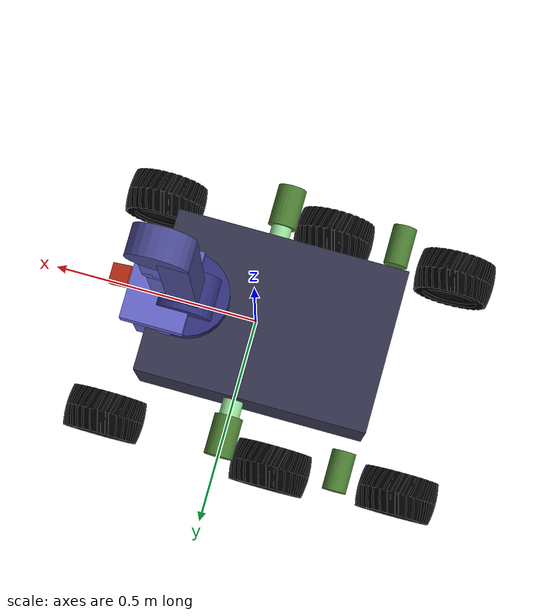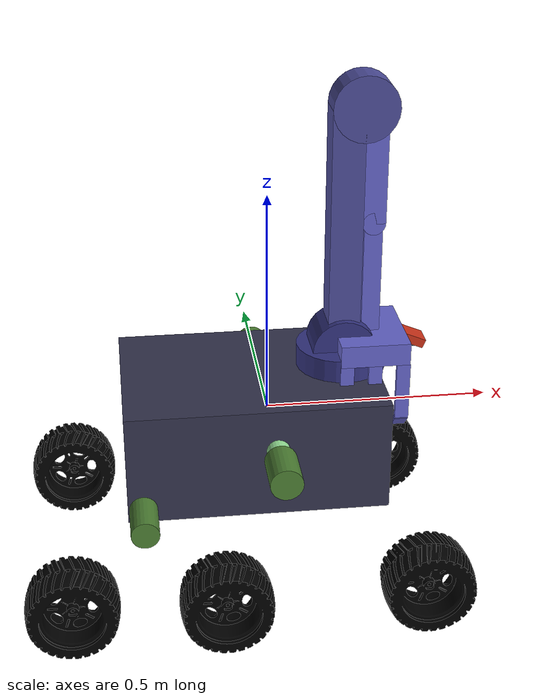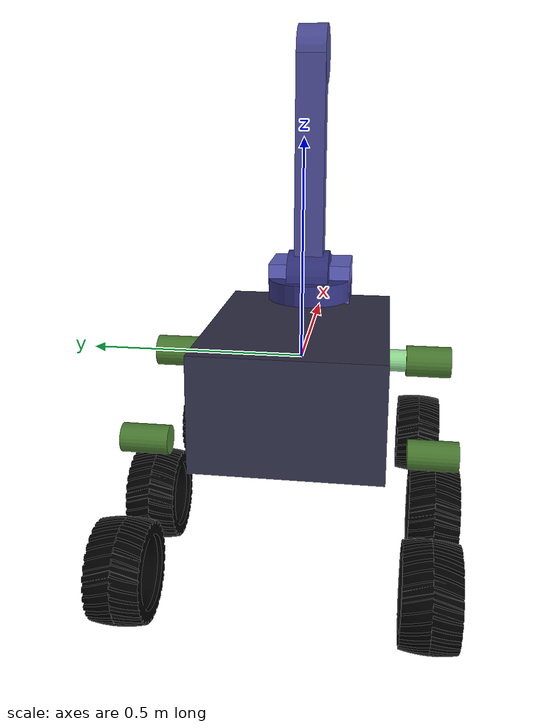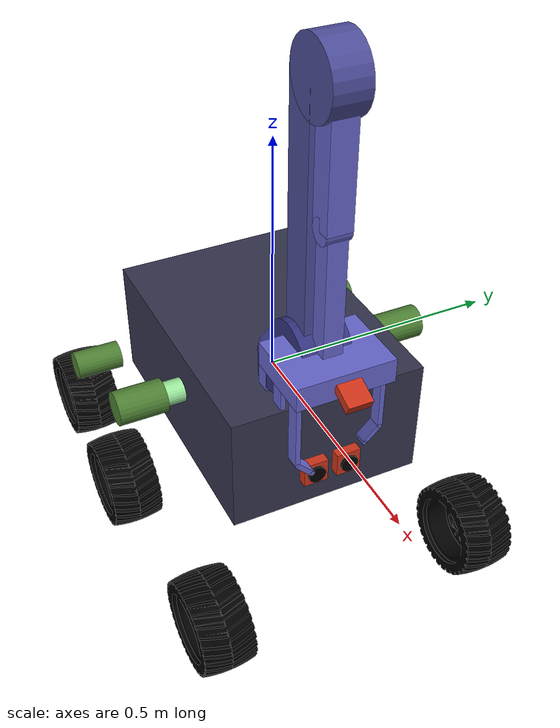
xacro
<?xml version="1.0"?>
<robot xmlns:xacro="http://www.ros.org/wiki/xacro" name="rover">

    <gazebo>
        <plugin name="gazebo_ros_control" filename="libgazebo_ros_pkgs.so">
            <robotNamespace>rover</robotNamespace>
        </plugin>
    </gazebo>

    <xacro:include filename="rocker-bogie/__rocker-bogie.xacro"/>
    <xacro:include filename="base/__base.xacro"/>
    <xacro:include filename="arm/__arm.xacro"/>

</robot>

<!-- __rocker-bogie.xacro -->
<robot xmlns:xacro="http://www.ros.org/wiki/xacro" name="rocker-bogie">

<!-- INCLUDED FILES -->
    <xacro:include filename="rocker/__rocker.xacro"/>
    <xacro:include filename="bogie/__bogie.xacro"/>
    <xacro:include filename="suspension_beam.xacro"/>
    <xacro:include filename="wheel.xacro"/>

<!-- PROPERIES -->
    <!-- SUSPENSION PROPERTIES-->
    <xacro:property name="suspension_width" value=".580"/>

    <xacro:property name="bogie_x" value="-.292"/>
    <xacro:property name="bogie_y" value=" .000"/>
    <xacro:property name="bogie_z" value="-.100"/>

    <xacro:property name="wheel_f_x" value=" .319"/>
    <xacro:property name="wheel_f_y" value=" .000"/>
    <xacro:property name="wheel_f_z" value="-.305"/>

    <xacro:property name="wheel_m_x" value=" .165"/>
    <xacro:property name="wheel_m_y" value=" .020"/>
    <xacro:property name="wheel_m_z" value="-.205"/>

    <xacro:property name="wheel_b_x" value="-.165"/>
    <xacro:property name="wheel_b_y" value="0"/>
    <xacro:property name="wheel_b_z" value="-.205"/>

    <!-- WHEELS POSITIONS -->
    <xacro:property name="wheel_base_f" value=".550"/>
    <xacro:property name="wheel_base_m" value=".600"/>
    <xacro:property name="wheel_base_b" value=".500"/>

    <xacro:property name="h_wheel" value=".250"/>
    <xacro:property name="l_wheel_f" value=".305"/>

    <!-- CUSTOM SIM PROPS -->
    <xacro:property name="h_bogie" value=".170"/>
    <xacro:property name="l_bogie" value=".305"/>
    <xacro:property name="l_wheel_m" value=".200"/>
    <xacro:property name="l_wheel_b" value=".200"/>

    <!-- ELEMENTS DIAMETERS -->
    <xacro:property name="suspension_beam_length" value=".600"/>
    <xacro:property name="suspension_beam_radius" value=".025"/>

    <xacro:property name="rocker_bearing_length" value=".100"/>
    <xacro:property name="rocker_bearing_radius" value=".035"/>

    <xacro:property name="bogie_bearing_length" value=".100"/>
    <xacro:property name="bogie_bearing_radius" value=".030"/>

    <xacro:property name="wheel_width" value=".100"/>
    <xacro:property name="wheel_radius" value=".100"/>

<!-- RELATIVE VARIABLES -->
    <xacro:property name="f_wheel_deviation" value="${(wheel_base_f - wheel_base_m)/2}"/>
    <xacro:property name="b_wheel_deviation" value="${(wheel_base_b - wheel_base_m)/2}"/>
    <xacro:property name="wheel_offset" value=".100"/>

<!-- MAIN LINK -->
    <xacro:suspension_beam name="suspension_beam"/>

<!-- SUSPENSION -->
    <xacro:rocker name="rocker_l" parent="suspension_beam" x="0" y="${suspension_width/2}"    z="0" side="1"/>  <!-- 1 = left -->
    <xacro:rocker name="rocker_r" parent="suspension_beam" x="0" y="${-suspension_width/2}"    z="0" side="-1"/> <!-- -1 = right -->

    <xacro:bogie name="bogie_l" parent="rocker_l_bearing" x="${bogie_x}" y="${bogie_y}"  z="${bogie_z}" side="1"/>
    <xacro:bogie name="bogie_r" parent="rocker_r_bearing" x="${bogie_x}" y="${bogie_y}"  z="${bogie_z}" side="-1"/>

<!-- WHEELS -->
    <xacro:wheel name="fl" parent="rocker_l_bearing" x="${wheel_f_x}" y="${+wheel_f_y}"  z="${wheel_f_z}" side="1"/>
    <xacro:wheel name="fr" parent="rocker_r_bearing" x="${wheel_f_x}" y="${-wheel_f_y}"  z="${wheel_f_z}" side="-1"/>

    <xacro:wheel name="ml" parent="bogie_l_bearing"  x="${wheel_m_x}" y="${+wheel_m_y}"  z="${wheel_m_z}" side="1"/>
    <xacro:wheel name="mr" parent="bogie_r_bearing"  x="${wheel_m_x}" y="${-wheel_m_y}"  z="${wheel_m_z}" side="-1"/>

    <xacro:wheel name="bl" parent="bogie_l_bearing"  x="${wheel_b_x}" y="${+wheel_b_y}"  z="${wheel_b_z}" side="1"/>
    <xacro:wheel name="br" parent="bogie_r_bearing"  x="${wheel_b_x}" y="${-wheel_b_y}"  z="${wheel_b_z}" side="-1"/>

<!-- MY DIFFERENTIAL PLUGIN -->
    <gazebo>
        <plugin name="differential_pid" filename="libDifferentialPID.so">
            <leftJoint>rocker_l_bearing_joint</leftJoint>
            <rightJoint>rocker_r_bearing_joint</rightJoint>
            <topic>/rover/differential_pid</topic>
            <Kp>1000</Kp>
            <Ki>0</Ki>
            <Kd>3000</Kd>
            <limit>10000</limit>
        </plugin>
    </gazebo>

 <!-- DYNAMOMETER PLUGINS -->
    <gazebo>
        <plugin name="rocker_l_bearing_joint_dynamometer" filename="libJointDynamometer.so">
            <joint>rocker_l_bearing_joint</joint>
            <topic>/rover/joint_dynamometer/rocker_l_bearing_joint</topic>
        </plugin>
    </gazebo>

    <gazebo>
        <plugin name="rocker_r_bearing_joint_dynamometer" filename="libJointDynamometer.so">
            <joint>rocker_r_bearing_joint</joint>
            <topic>/rover/joint_dynamometer/rocker_r_bearing_joint</topic>
        </plugin>
    </gazebo>

    <gazebo>
        <plugin name="bogie_l_bearing_joint_dynamometer" filename="libJointDynamometer.so">
            <joint>bogie_l_bearing_joint</joint>
            <topic>/rover/joint_dynamometer/bogie_l_bearing_joint</topic>
        </plugin>
    </gazebo>

    <gazebo>
        <plugin name="bogie_r_bearing_joint_dynamometer" filename="libJointDynamometer.so">
            <joint>bogie_r_bearing_joint</joint>
            <topic>/rover/joint_dynamometer/bogie_r_bearing_joint</topic>
        </plugin>
    </gazebo>

    <gazebo>
        <plugin name="wheel_fl_joint_dynamometer" filename="libJointDynamometer.so">
            <joint>wheel_fl_joint</joint>
            <topic>/rover/joint_dynamometer/wheel_fl_joint</topic>
        </plugin>
    </gazebo>

    <gazebo>
        <plugin name="wheel_fr_joint_dynamometer" filename="libJointDynamometer.so">
            <joint>wheel_fr_joint</joint>
            <topic>/rover/joint_dynamometer/wheel_fr_joint</topic>
        </plugin>
    </gazebo>

    <gazebo>
        <plugin name="wheel_ml_joint_dynamometer" filename="libJointDynamometer.so">
            <joint>wheel_ml_joint</joint>
            <topic>/rover/joint_dynamometer/wheel_ml_joint</topic>
        </plugin>
    </gazebo>

    <gazebo>
        <plugin name="wheel_mr_joint_dynamometer" filename="libJointDynamometer.so">
            <joint>wheel_mr_joint</joint>
            <topic>/rover/joint_dynamometer/wheel_mr_joint</topic>
        </plugin>
    </gazebo>

    <gazebo>
        <plugin name="wheel_bl_joint_dynamometer" filename="libJointDynamometer.so">
            <joint>wheel_bl_joint</joint>
            <topic>/rover/joint_dynamometer/wheel_bl_joint</topic>
        </plugin>
    </gazebo>

    <gazebo>
        <plugin name="wheel_br_joint_dynamometer" filename="libJointDynamometer.so">
            <joint>wheel_br_joint</joint>
            <topic>/rover/joint_dynamometer/wheel_br_joint</topic>
        </plugin>
    </gazebo>

</robot>

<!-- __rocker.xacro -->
<robot xmlns:xacro="http://www.ros.org/wiki/xacro" name="rocker">

<!-- INCLUDE -->
    <xacro:include filename="rocker_bearing.xacro"/>
    <xacro:include filename="rocker_link1.xacro"/>
    <xacro:include filename="rocker_link2.xacro"/>
    <xacro:include filename="rocker_link3.xacro"/>
    <xacro:include filename="rocker_link_diff.xacro"/>

<!-- PROPERTIES -->
    <xacro:property name="rocker_link1_length"      value=".500"/>
    <xacro:property name="rocker_link1_width"       value=".040"/>
    <xacro:property name="rocker_link1_height"      value=".050"/>
    <xacro:property name="rocker_link1_x"            value=".000"/>
    <xacro:property name="rocker_link1_y"            value=".000"/>
    <xacro:property name="rocker_link1_z"            value=".000"/>
    <xacro:property name="rocker_link1_offset_x"    value=".050"/>
    <xacro:property name="rocker_link1_offset_y"    value=".000"/>
    <xacro:property name="rocker_link1_offset_z"    value=".000"/>
    <xacro:property name="rocker_link1_pitch"        value="-.2"/>

    <xacro:property name="rocker_link2_length"      value=".250"/>
    <xacro:property name="rocker_link2_width"       value=".040"/>
    <xacro:property name="rocker_link2_height"      value=".050"/>
    <xacro:property name="rocker_link2_x"            value="${-rocker_link1_length/2+rocker_link1_offset_x}"/>
    <xacro:property name="rocker_link2_y"            value=".000"/>
    <xacro:property name="rocker_link2_z"            value=".000"/>
    <xacro:property name="rocker_link2_offset_x"    value="${-rocker_link2_length/2}"/>
    <xacro:property name="rocker_link2_offset_y"    value=".000"/>
    <xacro:property name="rocker_link2_offset_z"    value=".000"/>
    <xacro:property name="rocker_link2_pitch"        value="1.28"/>

    <xacro:property name="rocker_link3_length"      value=".190"/>
    <xacro:property name="rocker_link3_width"       value=".040"/>
    <xacro:property name="rocker_link3_height"      value=".050"/>
    <xacro:property name="rocker_link3_x"            value="${rocker_link1_length/2+rocker_link1_offset_x}"/>
    <xacro:property name="rocker_link3_y"            value=".000"/>
    <xacro:property name="rocker_link3_z"            value=".000"/>
    <xacro:property name="rocker_link3_offset_x"    value="${rocker_link3_length/2}"/>
    <xacro:property name="rocker_link3_offset_y"    value=".000"/>
    <xacro:property name="rocker_link3_offset_z"    value=".000"/>
    <xacro:property name="rocker_link3_pitch"        value="-1.31"/>

    <xacro:property name="link_diff_lenght" value=".100"/>
    <xacro:property name="link_diff_radius" value=".005"/>

<!-- LINKS -->

    <xacro:macro name="rocker" params="name parent x y z side">

        <xacro:rocker_bearing name="${name}_bearing" parent="${parent}" x="${x}" y="${y}" z="${z}" side="${side}"/>

    </xacro:macro>
</robot>

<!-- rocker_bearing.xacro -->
<robot xmlns:xacro="http://www.ros.org/wiki/xacro" name="rocker">

<!-- GEOMETRY -->
    <xacro:macro name="rocker_geometry">
        <origin rpy="1.57075 0 0"/>
        <geometry>
            <cylinder length="${rocker_bearing_length}" radius="${rocker_bearing_radius}"/>
        </geometry>
    </xacro:macro>

<!-- MATERIAL -->
    <xacro:macro name="rocker_material">
        <material name="dark_green">
            <color rgba=".3 .5 .2 1"/>
        </material>
    </xacro:macro>

<!-- LINK -->
    <xacro:macro name="rocker_bearing" params="name parent x y z side">
        <link name="${name}">
            <visual>
                <xacro:rocker_geometry/>
                <xacro:rocker_material/>
            </visual>
            <collision>
                <xacro:rocker_geometry/>
            </collision>
            <inertial>
                <mass value="3"/>
                <xacro:if value="${side == 1}"> <!-- LEFT-->
                    <origin xyz="0.247725 0.035298 -0.066751" rpy="0 0 0"/>
                    <inertia ixx="0.050813" ixy="0.009439" ixz="-0.021963" iyy="0.135830" iyz="0.004023" izz="0.097893"/>
                </xacro:if>
                <xacro:if value="${side == -1}"> <!-- RIGHT-->
                    <origin xyz="0.247727 -0.035298 -0.066751" rpy="0 0 0"/>
                    <inertia ixx="0.050813" ixy="-0.009439" ixz="-0.021960" iyy="0.135831" iyz="-0.004023" izz="0.097894"/>
                </xacro:if>
            </inertial>
        </link>

        <gazebo reference="${name}">
            <mu1> .2 </mu1>
            <mu2> .2 </mu2>
            <material> Gazebo/Grey </material>
            <selfCollide> True </selfCollide>
        </gazebo>

            <joint name="${name}_joint" type="revolute">
                <parent link="${parent}"/>
                <child link="${name}"/>
                <origin rpy="0 0 0" xyz="${x} ${y} ${z}"/>
                <axis xyz="0 1 0"/>
                <limit effort="10000" velocity="1" lower="-0.5" upper="0.5"/>
                <dynamics damping="2" friction="0"/>
            </joint>

            <gazebo reference="${name}_joint">
                <provideFeedback value="true"/>
            </gazebo>

    </xacro:macro>

</robot>

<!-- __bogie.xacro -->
<robot xmlns:xacro="http://www.ros.org/wiki/xacro" name="bogie">

<!-- INCLUDE -->
    <xacro:include filename="bogie_bearing.xacro"/>
    <xacro:include filename="bogie_link1.xacro"/>
    <xacro:include filename="bogie_link2.xacro"/>

<!-- PROPERTIES -->
    <xacro:property name="bogie_link1_length"      value=".215"/>
    <xacro:property name="bogie_link1_width"       value=".040"/>
    <xacro:property name="bogie_link1_height"      value=".050"/>
    <xacro:property name="bogie_link1_x"            value=".000"/>
    <xacro:property name="bogie_link1_y"            value=".000"/>
    <xacro:property name="bogie_link1_z"            value=".000"/>
    <xacro:property name="bogie_link1_offset_x"    value="${bogie_link1_length/2}"/>
    <xacro:property name="bogie_link1_offset_y"    value=".025"/>
    <xacro:property name="bogie_link1_offset_z"    value=".000"/>
    <xacro:property name="bogie_link1_pitch"        value="-0.38"/>

    <xacro:property name="bogie_link2_length"      value=".215"/>
    <xacro:property name="bogie_link2_width"       value=".040"/>
    <xacro:property name="bogie_link2_height"      value=".050"/>
    <xacro:property name="bogie_link2_x"            value=".000"/>
    <xacro:property name="bogie_link2_y"            value=".000"/>
    <xacro:property name="bogie_link2_z"            value=".000"/>
    <xacro:property name="bogie_link2_offset_x"    value="${-bogie_link2_length/2}"/>
    <xacro:property name="bogie_link2_offset_y"    value="-.025"/>
    <xacro:property name="bogie_link2_offset_z"    value=".000"/>
    <xacro:property name="bogie_link2_pitch"        value="0.38"/>

<!-- LINKS -->
    <xacro:macro name="bogie" params="name parent x y z side">

        <xacro:bogie_bearing name="${name}_bearing" parent="${parent}" x="${x}" y="${y}" z="${z}" side="${side}"/>

    </xacro:macro>

</robot>

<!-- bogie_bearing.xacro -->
<robot xmlns:xacro="http://www.ros.org/wiki/xacro" name="bogie_bearing">

<!-- GEOMETRY -->
    <xacro:macro name="bogie_bearing_geometry">
        <origin rpy="1.57075 0 0"/>
        <geometry>
            <cylinder length="${bogie_bearing_length}" radius="${bogie_bearing_radius}"/>
        </geometry>
    </xacro:macro>

<!-- MATERIAL -->
    <xacro:macro name="bogie_bearing_material">
        <material name="dark_green">
            <color rgba=".3 .5 .2 1"/>
        </material>
    </xacro:macro>

<!-- LINK -->
    <xacro:macro name="bogie_bearing" params="name parent x y z side">
        <link name="${name}">
            <visual>
                <xacro:bogie_bearing_geometry/>
                <xacro:bogie_bearing_material/>
            </visual>
            <collision>
                <xacro:bogie_bearing_geometry/>
            </collision>
            <inertial>
                <mass value="6.143721"/>
                <xacro:if value="${side == 1}"> <!-- LEFT-->
                    <origin xyz="-0.000010 0.045682 0.012347" rpy="0 0 0"/>
                    <inertia ixx="0.082737" ixy="0.015401" ixz="-0.000002" iyy="0.236740" iyz="0.013790" izz="0.176983"/>
                </xacro:if>
                <xacro:if value="${side == -1}"> <!-- RIGHT-->
                    <origin xyz="-0.000007 -0.045682 0.012347" rpy="0 0 0"/>
                    <inertia ixx="0.082737" ixy="-0.015402" ixz="0.000003" iyy="0.236740" iyz="-0.013790" izz="0.176983"/>
                </xacro:if>
            </inertial>
        </link>

        <gazebo reference="${name}">
            <mu1> .2 </mu1>
            <mu2> .2 </mu2>
            <material> Gazebo/Grey </material>
            <selfCollide> True </selfCollide>
        </gazebo>

            <joint name="${name}_joint" type="revolute">
                <parent link="${parent}"/>
                <child link="${name}"/>
                <origin rpy="0 0 0" xyz="${x} ${y} ${z}"/>
                <axis xyz="0 1 0"/>
                <limit effort="1" velocity="1" lower="-0.5" upper="0.5"/>
                <dynamics damping="1"/>
            </joint>

            <gazebo reference="${name}_joint">
                <provideFeedback value="true"/>
            </gazebo>

            <transmission name="${name}_transmission">
                <type>transmission_interface/SimpleTransmission</type>
                <joint name="${name}_joint">
                    <hardwareInterface>EffortJointInterface</hardwareInterface>
                </joint>
                <actuator name="${name}_motor">
                    <hardwareInterface>EffortJointInterface</hardwareInterface>
                    <mechanicalReduction>1</mechanicalReduction>
                </actuator>
            </transmission>

    </xacro:macro>

</robot>

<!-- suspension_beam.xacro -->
<robot xmlns:xacro="http://www.ros.org/wiki/xacro" name="suspension_beam">

<!-- GEOMETRY -->
    <xacro:macro name="suspension_beam_geometry">
        <origin rpy="1.57075 0 0" xyz="0 0 0"/>
        <geometry>
            <cylinder length="${suspension_beam_length}" radius="${suspension_beam_radius}"/>
        </geometry>
    </xacro:macro>

<!-- MATERIAL -->
    <xacro:macro name="suspension_beam_material">
        <material name="light_green">
            <color rgba=".6 .9 .6 1"/>
        </material>
    </xacro:macro>

<!-- LINK -->
    <xacro:macro name="suspension_beam" params="name">

    <!-- DUMMY LINK -->
        <link name="base_link">
        </link>
        <joint name="base_jonit" type="fixed">
            <parent link="base_link"/>
            <child link="${name}"/>
        </joint>

    <!-- MAIN LINK -->
        <link name="${name}">
            <visual>
                <xacro:suspension_beam_geometry/>
                <xacro:suspension_beam_material/>
            </visual>
            <collision>
                <xacro:suspension_beam_geometry/>
            </collision>
            <inertial>
                <mass value="0.001"/>
                <inertia ixx="0.000005" ixy="0" ixz="0" iyy="0.000005" iyz="0" izz="0.000005"/>
            </inertial>
        </link>

        <gazebo reference="base_link">
            <mu1> .2 </mu1>
            <mu2> .2 </mu2>
            <material> Gazebo/Wh </material>
            <selfCollide> True </selfCollide>
        </gazebo>

    </xacro:macro>

</robot>

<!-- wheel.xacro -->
<robot xmlns:xacro="http://www.ros.org/wiki/xacro" name="wheel">

<!-- GEOMETRY -->
    <xacro:macro name="wheel_geometry">
        <origin rpy="1.57075 0 0"/>
        <geometry>
            <cylinder length="${wheel_width}" radius="${wheel_radius}"/>
        </geometry>
    </xacro:macro>

<!-- VISUAL -->
    <xacro:macro name="wheel_visual">
        <origin xyz="0.01 -0.05 -0.13" rpy="0 0 1.57075"/>
        <geometry>
            <mesh filename="package://phobos_meshes/rover_stl/kolo_stl.STL" scale="0.001 0.001 0.001"/>
        </geometry>
    </xacro:macro>

<!-- MATERIAL -->
    <xacro:macro name="wheel_material">
        <material name="black">
            <color rgba=".0 .0 .0 1"/>
        </material>
    </xacro:macro>

<!-- LINK -->
    <xacro:macro name="wheel" params="name parent x y z side">

        <link name="wheel_${name}">
            <visual>
                <xacro:wheel_visual/>
                <xacro:wheel_material/>
            </visual>
            <collision>
                <xacro:wheel_geometry/>
            </collision>
            <inertial>
                 <mass value="1.67"/>
                 <origin xyz="0 0 0" rpy="0 0 0"/>
                 <inertia ixx=".007228" ixy="0" ixz="0" iyy=".011596" iyz="0" izz=".007228"/>
            </inertial>
        </link>

        <gazebo reference="wheel_${name}">
            <mu1 value="0.5"/>
            <mu2 value="0.5"/>
            <material value="Gazebo/Black"/>
            <selfCollide value="True"/>
        </gazebo>

        <joint name="wheel_${name}_joint" type="continuous">
            <parent link="${parent}"/>
            <child link="wheel_${name}"/>
            <origin rpy="${-side*0.02} 0 0" xyz="${x} ${y} ${z}"/>
            <axis xyz="0 1 0"/>
            <limit effort="100" velocity="10"/>
            <dynamics damping="1"/>
        </joint>

        <gazebo reference="wheel_${name}_joint">
            <provideFeedback value="true"/>
        </gazebo>

        <gazebo>
            <plugin name="joint_limiter_wheel_${name}" filename="libJointLimiter.so">
                <joint>wheel_${name}_joint</joint>
                <topic>/simulation/controller/vel/wheel_${name}</topic>
                <lower>-9999999</lower>
                <upper>9999999</upper>
            </plugin>
        </gazebo>
        <gazebo>
            <plugin name="joint_encoder_wheel_${name}" filename="libJointEncoder.so">
                <joint>wheel_${name}_joint</joint>
                <topic>/simulation/encoder/rel/wheel_${name}</topic>
                <lower>0</lower>
                <upper>9999999</upper>
                <absolute>0</absolute>
                <resolution>3600</resolution>
            </plugin>
        </gazebo>
        <gazebo>
            <plugin name="joint_controller_wheel_${name}" filename="libControllerPID.so">
                <joint>wheel_${name}_joint</joint>
                <topic>/simulation/controller/vel/wheel_${name}</topic>
                <Kp>2</Kp>
                <Ki>0.1</Ki>
                <Kd>0.1</Kd>
                <limit>100</limit>
            </plugin>
        </gazebo>

    </xacro:macro>
</robot>

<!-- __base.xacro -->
<robot xmlns:xacro="http://www.ros.org/wiki/xacro" name="rover">

<!-- INCLUDED FILES -->
    <xacro:include filename="main_body.xacro"/>
    <xacro:include filename="tower_yaw.xacro"/>
    <xacro:include filename="tower_pitch.xacro"/>
    <xacro:include filename="../sensors/camera.xacro"/>

<!-- PROPERTIES -->

    <xacro:property name="body_length" value=".570"/>
    <xacro:property name="body_width" value=".400"/>
    <xacro:property name="body_height" value=".250"/>

    <xacro:property name="body_translation_x" value="-.040"/>
    <xacro:property name="body_translation_z" value="-.0325"/>

    <xacro:property name="tower_pose_x" value="${-body_length/2 - +0.05}"/>
    <xacro:property name="tower_pose_y" value=".160"/>
    <xacro:property name="tower_pose_z" value="${body_height/2 + tower_yaw_height/2}"/>

    <xacro:property name="tower_yaw_height" value=".400"/>
    <xacro:property name="tower_yaw_radius" value=".025"/>

    <xacro:property name="tower_pitch_length" value=".100"/>
    <xacro:property name="tower_pitch_width" value=".150"/>
    <xacro:property name="tower_pitch_height" value=".050"/>

<!-- BODY -->
    <xacro:main_body name="main_body" parent="suspension_beam" x="${body_translation_x}" y="0" z="${body_translation_z}"/>

<!--TOWER -->

<!-- SENSORS -->
    <xacro:camera_link name="camera1" parent="main_body" x="${body_length/2 + camera_x/2 + body_translation_x}" y=".035" z="-.070" pitch="0"/>
    <xacro:camera_link name="camera2" parent="main_body" x="${body_length/2 + camera_x/2 + body_translation_x}" y="-.035" z="-.070" pitch="0"/>

</robot>

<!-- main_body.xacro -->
<robot xmlns:xacro="http://www.ros.org/wiki/xacro" name="main_body">

<!-- GEOMETRY -->
    <xacro:macro name="main_body_geometry_1">
        <origin rpy="0 0 0" xyz="${x} ${y} ${z}"/>
        <geometry>
            <box size="${body_length} ${body_width} ${body_height}"/>
        </geometry>
    </xacro:macro>

<!-- MATERIAL -->
    <xacro:macro name="main_body_material">
        <material name="dark_gray">
            <color rgba=".2 .2 .3 1"/>
        </material>
    </xacro:macro>

<!-- LINK -->
    <xacro:macro name="main_body" params="name parent x y z">

    <!-- MAIN LINK -->
        <link name="${name}">
            <visual>
                <xacro:main_body_geometry_1/>
                <xacro:main_body_material/>
            </visual>
            <collision>
                <xacro:main_body_geometry_1/>
            </collision>
    <!-- BOXES FOR STONES -->

            <inertial>
                 <mass value="40"/>
                 <origin rpy="0 0 0" xyz="0 0 -.2"/>
                 <inertia ixx=".1" ixy="0.001" ixz="0.001" iyy=".1" iyz="0.001" izz=".1"/>
            </inertial>
        </link>

        <gazebo reference="${name}">
            <mu1> .2 </mu1>
            <mu2> .2 </mu2>
            <material> Gazebo/Orange </material>
            <selfCollide> True </selfCollide>
        </gazebo>

        <joint name="${name}_joint" type="fixed">
            <parent link="${parent}"/>
            <child link="${name}"/>
            <origin rpy="0 0 0" xyz="0 0 0"/>
        </joint>
        <gazebo reference="${name}_joint">
            <stopCfm>0.8</stopCfm>
            <stopErp>0.5</stopErp>
            <provideFeedback>true</provideFeedback>
            <implicitSpringDamper>true</implicitSpringDamper>
            <fudgeFactor>0.0</fudgeFactor>
        </gazebo>

    </xacro:macro>

</robot>

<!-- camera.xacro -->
<robot xmlns:xacro="http://www.ros.org/wiki/xacro" name="camera">

<!-- DIMMENSIONS -->
    <xacro:property name="camera_x" value=".02"/>
    <xacro:property name="camera_y" value=".05"/>
    <xacro:property name="camera_z" value=".05"/>

    <xacro:property name="camera_lens_radius" value=".018"/>
    <xacro:property name="camera_lens_length" value=".01"/>

<!-- GEOMETRY -->
    <xacro:macro name="camera_geometry_1">
        <origin rpy="0 0 0" xyz="0 0 0" />
        <geometry>
            <box size="${camera_x} ${camera_y} ${camera_z}"/>
        </geometry>
    </xacro:macro>

    <xacro:macro name="camera_geometry_2">
        <origin rpy="0 0 0" xyz="0 0 0" />
        <geometry>
            <cylinder radius="${camera_lens_radius}" length="${camera_lens_length}"/>
        </geometry>
    </xacro:macro>

<!-- MATERIAL -->
    <xacro:macro name="camera_material_1">
        <material name="Red">
            <color rgba=".8 .2 .1 1"/>
        </material>
    </xacro:macro>

    <xacro:macro name="camera_material_2">
        <material name="Black">
            <color rgba="0 0 0 1"/>
        </material>
    </xacro:macro>

<!-- CAMERA GAZEBO PLUGIN -->
    <xacro:macro name="camera_plugin" params="name width height">
        <gazebo reference="${name}">
            <sensor type="camera" name="${name}">
                <update_rate> 10.0 </update_rate>
                <camera name="{name}" >
                    <horizontal_fov>2</horizontal_fov>
                    <image>
                        <width>${width}</width>
                        <height>${height}</height>
                        <format>B8G8R8</format>
                    </image>
                    <clip>
                        <near>0.02</near>
                        <far>300</far>
                    </clip>
                    <noise>
                        <type>gaussian</type>
                        <mean>0.0</mean>
                        <stddev>0.007</stddev>
                    </noise>
                </camera>

                <plugin name="camera_controller" filename="libgazebo_ros_camera.so">
                    <alwaysOn>True</alwaysOn>
                    <updateRate>0.0</updateRate>
                    <cameraName>rover/${name}</cameraName>
                    <imageTopicName>image_raw</imageTopicName>
                    <cameraInfoTopicName>camera_info</cameraInfoTopicName>
                    <frameName>${name}_lens</frameName>
                    <hackBaseline>0.07</hackBaseline>
                    <distortionK1>0.0</distortionK1>
                    <distortionK2>0.0</distortionK2>
                    <distortionK3>0.0</distortionK3>
                    <distortionT1>0.0</distortionT1>
                    <distortionT2>0.0</distortionT2>
                </plugin>

            </sensor>
        </gazebo>
    </xacro:macro>

<!-- LINK -->
    <xacro:macro name="camera_link" params="name parent x y z pitch">

        <!--CAMERA BOARD -->

        <link name="${name}">
            <visual>
                <xacro:camera_geometry_1/>
                <xacro:camera_material_1/>
            </visual>
            <collision>
                <xacro:camera_geometry_1/>
            </collision>
            <inertial>
                 <mass value=".01"/>
                 <inertia ixx=".00000003" ixy="0" ixz="0" iyy=".00000003" iyz="0" izz=".00000003"/>
            </inertial>
        </link>

        <joint name="${name}_joint" type="fixed">
            <parent link="${parent}"/>
            <child link="${name}"/>
            <origin rpy="0 ${pitch} 0" xyz="${x} ${y} ${z}"/>
        </joint>

        <gazebo reference="${name}">
            <mu1> .2 </mu1>
            <mu2> .2 </mu2>
            <material> Gazebo/Red </material>
            <selfCollide> false </selfCollide>
        </gazebo>

        <!--CAMERA LENS -->

        <link name="${name}_lens">
            <visual>
                <xacro:camera_geometry_2/>
                <xacro:camera_material_2/>
            </visual>
            <collision>
                <xacro:camera_geometry_2/>
            </collision>
            <inertial>
                 <mass value=".01"/>
                 <inertia ixx=".003" ixy="0" ixz="0" iyy=".003" iyz="0" izz=".003"/>
            </inertial>
        </link>

        <joint name="${name}_lens_joint" type="fixed">
            <parent link="${name}"/>
            <child link="${name}_lens"/>
            <origin rpy="-1.57075 0 -1.57075" xyz="${camera_x/2} 0 0"/>
        </joint>

        <gazebo reference="${name}_lens">
            <mu1> .2 </mu1>
            <mu2> .2 </mu2>
            <material> Gazebo/Black </material>
            <selfCollide> false </selfCollide>
        </gazebo>

        <xacro:camera_plugin name="${name}" width="320" height="240"/>

    </xacro:macro>
</robot>

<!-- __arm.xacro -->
<robot xmlns:xacro="http://www.ros.org/wiki/xacro" name="arm">

<!-- INCLUDED FILES -->
    <xacro:include filename="link0.xacro"/>
    <xacro:include filename="link1.xacro"/>
    <xacro:include filename="link2.xacro"/>
    <xacro:include filename="link3.xacro"/>
    <xacro:include filename="link4.xacro"/>
    <xacro:include filename="finger.xacro"/>
    <xacro:include filename="finger_b.xacro"/>

    <xacro:include filename="../sensors/camera.xacro"/>

<!-- PROPERTIES -->
    <xacro:property name="manipulator_pose_x" value=".165"/>
    <xacro:property name="manipulator_pose_z" value=".125"/>

    <xacro:property name="link0_length1" value=".050"/>
    <xacro:property name="link0_radius1" value=".100"/>
    <xacro:property name="link0_length2" value=".100"/>
    <xacro:property name="link0_radius2" value=".070"/>

    <xacro:property name="link1_length" value=".500"/>
    <xacro:property name="link1_width" value=".070"/>
    <xacro:property name="link1_height" value=".070"/>

    <xacro:property name="link2_length" value=".250"/>
    <xacro:property name="link2_width" value=".050"/>
    <xacro:property name="link2_height" value=".050"/>

    <xacro:property name="link3_length" value=".250"/>
    <xacro:property name="link3_width" value=".040"/>
    <xacro:property name="link3_height" value=".040"/>

    <xacro:property name="link4_length" value=".050"/>
    <xacro:property name="link4_width" value=".200"/>
    <xacro:property name="link4_height" value=".152"/>

    <xacro:property name="finger_length" value=".130"/>
    <xacro:property name="finger_width" value=".010"/>
    <xacro:property name="finger_height" value=".030"/>

<!-- LINKS -->
    <xacro:link0 name="link0" parent="main_body" x="${manipulator_pose_x}"            y="0"    z="${manipulator_pose_z}"/>
    <xacro:link1 name="link1" parent="link0"    x="0"              y="0"    z="${link0_length1/2 + link1_height/2}"/>
    <xacro:link2 name="link2" parent="link1"    x="${-link1_length}"    y="0"    z="${link1_height/2}"/>
    <xacro:link3 name="link3" parent="link2"    x="${link2_length}"     y="0"    z="${link2_height/2}"/>
    <xacro:link4 name="link4" parent="link3"    x="${link3_length}"     y="0"    z="0"/>

<!-- GRABBER -->

    <xacro:finger name="finger1" parent="link4" x="${link4_length + finger_length/2}" y="${link4_width/2 - finger_width/2}" z="${finger_height+.001}" side="-1"/>
    <xacro:finger_b name="finger1b" parent="finger1" x="0" y="0" z="${-2*finger_height-.001}" side="-1"/>

    <xacro:finger name="finger2" parent="link4" x="${link4_length + finger_length/2}" y="${-link4_width/2 + finger_width/2}" z="0" side="1"/>
    <xacro:finger_b name="finger2c" parent="finger2" x="0" y="0" z="${2*finger_height+.002}" side="1"/>
    <xacro:finger_b name="finger2b" parent="finger2" x="0" y="0" z="${-2*finger_height-.002}" side="1"/>

<!-- SENSORS -->
    <xacro:camera_link name="camera4" parent="link4" x=".030" y="0" z=".100" pitch="0.4"/>

</robot>

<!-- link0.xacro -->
<robot xmlns:xacro="http://www.ros.org/wiki/xacro" name="link0">

<!-- GEOMETRY 1 -->
    <xacro:macro name="link0_geometry1">
        <origin rpy="0 0 0" xyz="0 0 0"/>
        <geometry>
            <cylinder length="${link0_length1}" radius="${link0_radius1}"/>
        </geometry>
    </xacro:macro>

<!-- GEOMETRY 2 -->
    <xacro:macro name="link0_geometry2">
        <origin rpy="1.57075 0 0" xyz="0 0 ${link0_length1/2}"/>
        <geometry>
            <cylinder length="${link0_length2}" radius="${link0_radius2}"/>
        </geometry>
    </xacro:macro>

<!-- MATERIAL -->
    <xacro:macro name="link0_material">
        <material name="blue">
            <color rgba=".2 .2 .5 1"/>
        </material>
    </xacro:macro>

<!-- LINK -->
    <xacro:macro name="link0" params="name parent x y z">

<!-- LINK -->
        <link name="${name}">
            <visual>
                <xacro:link0_geometry1/>
                <xacro:link0_material/>
            </visual>
            <visual>
                <xacro:link0_geometry2/>
                <xacro:link0_material/>
            </visual>

            <collision>
                <xacro:link0_geometry1/>
            </collision>
            <collision>
                <xacro:link0_geometry2/>
            </collision>
            <inertial>
                 <mass value="1"/>
                 <inertia ixx=".003" ixy=".00" ixz=".00" iyy=".003" iyz=".00" izz=".003"/>
            </inertial>
        </link>
        <gazebo reference="${name}">
            <mu1> .2 </mu1>
            <mu2> .2 </mu2>
            <material> Gazebo/Grey </material>
            <selfCollide> False </selfCollide>
            <implicitSpringDamper> True </implicitSpringDamper>
        </gazebo>

<!-- JOINT -->
        <joint name="${name}_joint" type="revolute">
            <parent link="${parent}"/>
            <child link="${name}"/>
            <origin rpy="0 0 0" xyz="${x} ${y} ${z}"/>
            <axis xyz="0 0 -1"/>
            <limit effort="100" velocity="1" lower="-3" upper="3"/>
            <dynamics damping="1"/>
        </joint>
        <gazebo>
            <plugin name="${name}_joint_limiter" filename="libJointLimiter.so">
                <joint>${name}_joint</joint>
                <topic>/rover/${name}_velocity_controller</topic>
                <lower>-3</lower>
                <upper>3</upper>
            </plugin>
        </gazebo>
        <gazebo>
            <plugin name="${name}_controller" filename="libControllerPID.so">
                <joint>${name}_joint</joint>
                <topic>/rover/${name}_velocity_controller</topic>
                <Kp>20</Kp>
                <Ki>2</Ki>
                <Kd>1</Kd>
            </plugin>
        </gazebo>

<!-- TRANSMISSION -->

    </xacro:macro>
</robot>

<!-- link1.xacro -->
<robot xmlns:xacro="http://www.ros.org/wiki/xacro" name="link1">

<!-- GEOMETRY -->
    <xacro:macro name="link1_geometry_1">
        <origin rpy="0 0 0" xyz="${-link1_length/2} 0 0" />
        <geometry>
            <box size="${link1_length} ${link1_width} ${link1_height}"/>
        </geometry>
    </xacro:macro>

    <xacro:macro name="link1_geometry_2">
        <origin rpy="1.57075 0 0" xyz="${-link1_length} 0 ${link1_height/2}" />
        <geometry>
            <cylinder length="${link1_width}" radius="${link1_height}"/>
        </geometry>
    </xacro:macro>

<!-- MATERIAL -->
    <xacro:macro name="link1_material">
        <material name="light_blue">
            <color rgba=".3 .3 .6 1"/>
        </material>
    </xacro:macro>

<!-- LINK -->
    <xacro:macro name="link1" params="name parent x y z ">
        <link name="${name}">
            <visual>
                <xacro:link1_geometry_1/>
                <xacro:link1_material/>
            </visual>
            <visual>
                <xacro:link1_geometry_2/>
                <xacro:link1_material/>
            </visual>
            <collision>
                <xacro:link1_geometry_1/>
            </collision>
            <collision>
                <xacro:link1_geometry_2/>
            </collision>
            <inertial>
                 <origin rpy="0 0 0" xyz="${-link1_length/2} 0 0" />
                 <mass value="1"/>
                 <inertia ixx=".003" ixy="0.000" ixz="0.000" iyy=".003" iyz="0.000" izz=".003"/>
            </inertial>
        </link>
        <gazebo reference="${name}">
            <mu1> .2 </mu1>
            <mu2> .2 </mu2>
            <material> Gazebo/Grey </material>
            <selfCollide>True</selfCollide>
        </gazebo>

        <joint name="${name}_joint" type="revolute">
            <parent link="${parent}"/>
            <child link="${name}"/>
            <origin rpy="0 1.57075 0" xyz="${x} ${y} ${z}"/>
            <axis xyz="0 1 0"/>
            <limit effort="100" velocity="1" lower="-1.25" upper="1.6"/>
            <dynamics damping="1"/>
        </joint>
        <gazebo>
            <plugin name="joint_limiter_${name}" filename="libJointLimiter.so">
                <joint>${name}_joint</joint>
                <topic>/simulation/controller/vel/${name}</topic>
                <lower>-1.25</lower>
                <upper>1.6</upper>
            </plugin>
        </gazebo>
        <gazebo>
            <plugin name="joint_encoder_${name}" filename="libJointEncoder.so">
                <joint>${name}_joint</joint>
                <topic>/simulation/encoder/abs/${name}</topic>
                <lower>-1.25</lower>
                <upper>1.6</upper>
                <absolute>1</absolute>
                <resolution>3600</resolution>
            </plugin>
        </gazebo>
        <gazebo>
            <plugin name="joint_controller_${name}" filename="libControllerPID.so">
                <joint>${name}_joint</joint>
                <topic>/simulation/controller/vel/${name}</topic>
                <Kp>30</Kp>
                <Ki>3</Ki>
                <Kd>2</Kd>
            </plugin>
        </gazebo>

    </xacro:macro>
</robot>

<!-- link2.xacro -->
<robot xmlns:xacro="http://www.ros.org/wiki/xacro" name="link2">

<!-- GEOMETRY -->
    <xacro:macro name="link2_geometry_1">
        <origin rpy="0 0 0" xyz="${link2_length/2} 0 ${link2_height/2}" />
        <geometry>
            <box size="${link2_length} ${link2_width} ${link2_height}"/>
        </geometry>
    </xacro:macro>

    <xacro:macro name="link2_geometry_2">
        <origin rpy="1.57075 0 0" xyz="${link2_length} 0 ${link2_height/2}" />
        <geometry>
            <cylinder length="${link2_width}" radius="${link2_height/2}"/>
        </geometry>
    </xacro:macro>

<!-- MATERIAL -->
    <xacro:macro name="link2_material">
        <material name="link2_color">
            <color rgba=".4 .4 .8 1"/>
        </material>
    </xacro:macro>

<!-- LINK -->
    <xacro:macro name="link2" params="name parent x y z">

        <link name="${name}">
            <visual>
                <xacro:link2_geometry_1/>
                <xacro:link2_material/>
            </visual>
            <visual>
                <xacro:link2_geometry_2/>
                <xacro:link2_material/>
            </visual>
            <collision>
                <xacro:link2_geometry_1/>
            </collision>
            <collision>
                <xacro:link2_geometry_2/>
            </collision>
            <inertial>
                <origin rpy="0 0 0" xyz="${link2_length/2} 0 ${link2_height/2}" />
                <mass value="1"/>
                <inertia ixx=".003" ixy="0.000" ixz="0.000" iyy=".003" iyz="0.000" izz=".003"/>
            </inertial>
        </link>
        <gazebo reference="${name}">
            <mu1> .2 </mu1>
            <mu2> .2 </mu2>
            <material> Gazebo/Grey </material>
            <selfCollide>True</selfCollide>
        </gazebo>

        <joint name="${name}_joint" type="revolute">
            <parent link="${parent}"/>
            <child link="${name}"/>
            <origin rpy="0 0 0" xyz="${x} ${y} ${z}"/>
            <axis xyz="0 -1 0"/>
            <limit effort="100" velocity="1" lower="0" upper="3.65"/>
            <dynamics damping="1"/>
        </joint>
        <gazebo>
            <plugin name="joint_limiter_${name}" filename="libJointLimiter.so">
                <joint>${name}_joint</joint>
                <topic>/simulation/controller/vel/${name}</topic>
                <lower>0</lower>
                <upper>3.65</upper>
            </plugin>
        </gazebo>
        <gazebo>
            <plugin name="joint_encoder_${name}" filename="libJointEncoder.so">
                <joint>${name}_joint</joint>
                <topic>/simulation/encoder/abs/${name}</topic>
                <lower>0</lower>
                <upper>3.65</upper>
                <absolute>1</absolute>
                <resolution>3600</resolution>
            </plugin>
        </gazebo>
        <gazebo>
            <plugin name="joint_controller_${name}" filename="libControllerPID.so">
                <joint>${name}_joint</joint>
                <topic>/simulation/controller/vel/${name}</topic>
                <Kp>30</Kp>
                <Ki>3</Ki>
                <Kd>2</Kd>
            </plugin>
        </gazebo>

    </xacro:macro>
</robot>

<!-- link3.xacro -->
<robot xmlns:xacro="http://www.ros.org/wiki/xacro" name="link3">

<!-- GEOMETRY -->
    <xacro:macro name="link3_geometry">
        <origin rpy="0 0 0" xyz="${link3_length/2} 0 0" />
        <geometry>
            <box size="${link3_length} ${link3_width} ${link3_height}"/>
        </geometry>
    </xacro:macro>

<!-- MATERIAL -->
    <xacro:macro name="link3_material">
        <material name="link3_color">
            <color rgba=".4 .4 .8 1"/>
        </material>
    </xacro:macro>

<!-- LINK -->
    <xacro:macro name="link3" params="name parent x y z">

        <link name="${name}">
            <visual>
                <xacro:link3_geometry/>
                <xacro:link3_material/>
            </visual>
            <collision>
                <xacro:link3_geometry/>
            </collision>
            <inertial>
                <origin rpy="0 0 0" xyz="${link3_length/2} 0 ${link3_height/2}" />
                <mass value="1"/>
                <inertia ixx=".003" ixy="0.000" ixz="0.000" iyy=".003" iyz="0.000" izz=".003"/>
            </inertial>
        </link>
        <gazebo reference="${name}">
            <mu1> .2 </mu1>
            <mu2> .2 </mu2>
            <material> Gazebo/Grey </material>
            <selfCollide>True</selfCollide>
        </gazebo>

        <joint name="${name}_joint" type="revolute">
            <parent link="${parent}"/>
            <child link="${name}"/>
            <origin rpy="0 0 0" xyz="${x} ${y} ${z}"/>
            <axis xyz="0 -1 0"/>
            <limit effort="30" velocity="1" lower="-2.3" upper="1.1"/>
            <dynamics damping="1"/>
        </joint>
        <gazebo>
            <plugin name="joint_limiter_${name}" filename="libJointLimiter.so">
                <joint>${name}_joint</joint>
                <topic>/simulation/controller/vel/${name}</topic>
                <lower>-2.3</lower>
                <upper>1.1</upper>
            </plugin>
        </gazebo>
        <gazebo>
            <plugin name="joint_encoder_${name}" filename="libJointEncoder.so">
                <joint>${name}_joint</joint>
                <topic>/simulation/encoder/abs/${name}</topic>
                <lower>-2.3</lower>
                <upper>1.1</upper>
                <absolute>1</absolute>
                <resolution>3600</resolution>
            </plugin>
        </gazebo>
        <gazebo>
            <plugin name="joint_controller_${name}" filename="libControllerPID.so">
                <joint>${name}_joint</joint>
                <topic>/simulation/controller/vel/${name}</topic>
                <Kp>20</Kp>
                <Ki>0</Ki>
                <Kd>2</Kd>
            </plugin>
        </gazebo>

        <gazebo reference="${name}">
            <mu1> .2 </mu1>
            <mu2> .2 </mu2>
            <material> Gazebo/Blue </material>
            <selfCollide>True</selfCollide>
        </gazebo>

    </xacro:macro>
</robot>

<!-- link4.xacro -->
<robot xmlns:xacro="http://www.ros.org/wiki/xacro" name="link4">

<!-- GEOMETRY -->
    <xacro:macro name="link4_geometry">
        <origin rpy="0 0 0" xyz="${link4_length/2} 0 0" />
        <geometry>
            <box size="${link4_length} ${link4_width} ${link4_height}"/>
        </geometry>
    </xacro:macro>

<!-- MATERIAL -->
    <xacro:macro name="link4_material">
        <material name="link4_color">
            <color rgba=".4 .4 .8 1"/>
        </material>
    </xacro:macro>

<!-- LINK -->
    <xacro:macro name="link4" params="name parent x y z">

        <link name="${name}">
            <visual>
                <xacro:link4_geometry/>
                <xacro:link4_material/>
            </visual>
            <collision>
                <xacro:link4_geometry/>
            </collision>
            <inertial>
                <origin rpy="0 0 0" xyz="${link4_length/2} 0 ${link4_height/2}" />
                <mass value="0.7"/>
                <inertia ixx=".003" ixy="0.000" ixz="0.000" iyy=".003" iyz="0.000" izz=".003"/>
            </inertial>
        </link>
        <gazebo reference="${name}">
            <mu1> .2 </mu1>
            <mu2> .2 </mu2>
            <material> Gazebo/Grey </material>
            <selfCollide>True</selfCollide>
        </gazebo>

        <joint name="${name}_joint" type="revolute">
            <parent link="${parent}"/>
            <child link="${name}"/>
            <origin rpy="0 0 0" xyz="${x} ${y} ${z}"/>
            <axis xyz="1 0 0"/>
            <limit effort="40" velocity="3" lower="-3.14" upper="3.14"/>
            <dynamics damping="1"/>
        </joint>
        <gazebo>
            <plugin name="${name}_joint_limiter" filename="libJointLimiter.so">
                <joint>${name}_joint</joint>
                <topic>/rover/${name}_velocity_controller</topic>
                <lower>-3.14</lower>
                <upper>3.14</upper>
            </plugin>
        </gazebo>
        <gazebo>
            <plugin name="${name}_controller" filename="libControllerPID.so">
                <joint>${name}_joint</joint>
                <topic>/rover/${name}_velocity_controller</topic>
                <Kp>1.05</Kp>
                <Ki>0</Ki>
                <Kd>0.02</Kd>
            </plugin>
        </gazebo>

        <gazebo reference="${name}">
            <mu1> .2 </mu1>
            <mu2> .2 </mu2>
            <material> Gazebo/Yellow </material>
            <selfCollide>True</selfCollide>
        </gazebo>

    </xacro:macro>
</robot>

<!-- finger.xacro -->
<robot xmlns:xacro="http://www.ros.org/wiki/xacro" name="finger">

<!-- GEOMETRY -->
    <xacro:macro name="finger_geometry_1">
        <origin rpy="0 0 0" xyz="0 0 0" />
        <geometry>
            <box size="${finger_length} ${finger_width} ${finger_height}"/>
        </geometry>
    </xacro:macro>

    <xacro:macro name="finger_geometry_2">
        <origin rpy="0 0 ${0.785*side}" xyz="${finger_length/2+finger_length/6*0.707} ${finger_length/6*0.707*side} 0" />
        <geometry>
            <box size="${finger_length/3} ${finger_width} ${finger_height}"/>
        </geometry>
    </xacro:macro>

    <xacro:macro name="finger_geometry_3">
        <origin rpy="0 0 ${0.785*side}" xyz="${finger_length/2} 0 0" />
        <geometry>
            <cylinder length="${finger_height}" radius="${finger_width/2}"/>
        </geometry>
    </xacro:macro>

    <xacro:macro name="finger_geometry_4">
        <origin rpy="0 0 ${0.785*side}" xyz="${finger_length/2+finger_length/6*1.414} ${finger_length/6*1.414*side} 0" />
        <geometry>
            <cylinder length="${finger_height}" radius="${finger_width/2}"/>
        </geometry>
    </xacro:macro>

<!-- MATERIAL -->
    <xacro:macro name="finger_material">
        <material name="finger_color">
            <color rgba=".4 .4 .8 1"/>
        </material>
    </xacro:macro>

<!-- LINK -->
    <xacro:macro name="finger" params="name parent x y z side">

        <link name="${name}">
            <visual>
                <xacro:finger_geometry_1/>
                <xacro:finger_material/>
            </visual>
            <collision>
                <xacro:finger_geometry_1/>
            </collision>

            <visual>
                <xacro:finger_geometry_2/>
                <xacro:finger_material/>
            </visual>
            <collision>
                <xacro:finger_geometry_2/>
            </collision>

            <visual>
                <xacro:finger_geometry_3/>
                <xacro:finger_material/>
            </visual>
            <collision>
                <xacro:finger_geometry_3/>
            </collision>

            <visual>
                <xacro:finger_geometry_4/>
                <xacro:finger_material/>
            </visual>
            <collision>
                <xacro:finger_geometry_4/>
            </collision>

            <inertial>
                <origin rpy="0 0 0" xyz="0 0 0" />
                <mass value=".2"/>
                <inertia ixx=".0003" ixy="0.000" ixz="0.000" iyy=".0003" iyz="0.000" izz=".0003"/>
            </inertial>
        </link>
        <gazebo reference="${name}">
            <mu1> 10 </mu1>
            <mu2> 10 </mu2>
            <material> Gazebo/Grey </material>
            <selfCollide>True</selfCollide>
        </gazebo>

        <joint name="${name}_joint" type="prismatic">
            <parent link="${parent}"/>
            <child link="${name}"/>
            <origin rpy="0 0 0" xyz="${x} ${y} ${z}"/>
            <axis xyz="0 ${side*1} 0"/>
            <limit effort="10000" velocity="1" lower="0" upper="${link_4_width/2 - finger_width}"/>
            <dynamics damping=".1"/>
        </joint>
        <gazebo>
            <plugin name="joint_limiter_${name}" filename="libJointLimiter.so">
                <joint>${name}_joint</joint>
                <topic>/simulation/controller/vel/${name}</topic>
                <lower>0</lower>
                <upper>${link_4_width/2 - finger_width}</upper>
            </plugin>
        </gazebo>
        <gazebo>
            <plugin name="joint_encoder_${name}" filename="libJointEncoder.so">
                <joint>${name}_joint</joint>
                <topic>/simulation/encoder/abs/${name}</topic>
                <lower>0</lower>
                <upper>${link_4_width/2 - finger_width}</upper>
                <absolute>1</absolute>
                <resolution>10000</resolution>
            </plugin>
        </gazebo>
        <gazebo>
            <plugin name="joint_encoder_${name}" filename="libJointEncoder.so">
                <joint>${name}_joint</joint>
                <topic>/simulation/encoder/abs/${name}</topic>
                <lower>0</lower>
                <upper>${link_4_width/2 - finger_width}</upper>
                <absolute>1</absolute>
                <resolution>10000</resolution>
            </plugin>
        </gazebo>
        <gazebo>
            <plugin name="joint_controller${name}" filename="libControllerPID.so">
                <joint>${name}_joint</joint>
                <topic>/simulation/controller/vel/${name}</topic>
                <Kp>20</Kp>
                <Ki>2</Ki>
                <Kd>5</Kd>
            </plugin>
        </gazebo>

    </xacro:macro>
</robot>

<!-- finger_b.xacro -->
<robot xmlns:xacro="http://www.ros.org/wiki/xacro" name="finger_b">

<!-- GEOMETRY -->
    <xacro:macro name="finger_b_geometry_1">
        <origin rpy="0 0 0" xyz="0 0 0" />
        <geometry>
            <box size="${finger_length} ${finger_width} ${finger_height}"/>
        </geometry>
    </xacro:macro>

    <xacro:macro name="finger_b_geometry_2">
        <origin rpy="0 0 ${0.785*side}" xyz="${finger_length/2+finger_length/6*0.707} ${finger_length/6*0.707*side} 0" />
        <geometry>
            <box size="${finger_length/3} ${finger_width} ${finger_height}"/>
        </geometry>
    </xacro:macro>

    <xacro:macro name="finger_b_geometry_3">
        <origin rpy="0 0 ${0.785*side}" xyz="${finger_length/2} 0 0" />
        <geometry>
            <cylinder length="${finger_height}" radius="${finger_width/2}"/>
        </geometry>
    </xacro:macro>

    <xacro:macro name="finger_b_geometry_4">
        <origin rpy="0 0 ${0.785*side}" xyz="${finger_length/2+finger_length/6*1.414} ${finger_length/6*1.414*side} 0" />
        <geometry>
            <cylinder length="${finger_height}" radius="${finger_width/2}"/>
        </geometry>
    </xacro:macro>

<!-- MATERIAL -->
    <xacro:macro name="finger_b_material">
        <material name="finger_b_color">
            <color rgba=".4 .4 .8 1"/>
        </material>
    </xacro:macro>

<!-- LINK -->
    <xacro:macro name="finger_b" params="name parent x y z side">

        <link name="${name}">
            <visual>
                <xacro:finger_b_geometry_1/>
                <xacro:finger_b_material/>
            </visual>
            <collision>
                <xacro:finger_b_geometry_1/>
            </collision>

            <visual>
                <xacro:finger_b_geometry_2/>
                <xacro:finger_b_material/>
            </visual>
            <collision>
                <xacro:finger_b_geometry_2/>
            </collision>

            <visual>
                <xacro:finger_b_geometry_3/>
                <xacro:finger_b_material/>
            </visual>
            <collision>
                <xacro:finger_b_geometry_3/>
            </collision>

            <visual>
                <xacro:finger_b_geometry_4/>
                <xacro:finger_b_material/>
            </visual>
            <collision>
                <xacro:finger_b_geometry_4/>
            </collision>

            <inertial>
                <origin rpy="0 0 0" xyz="0 0 0" />
                <mass value=".1"/>
                <inertia ixx=".0003" ixy="0.000" ixz="0.000" iyy=".0003" iyz="0.000" izz=".0003"/>
            </inertial>
        </link>
        <gazebo reference="${name}">
            <mu1> 10 </mu1>
            <mu2> 10 </mu2>
            <material> Gazebo/Grey </material>
            <selfCollide>True</selfCollide>
        </gazebo>

        <joint name="${name}_joint" type="fixed">
            <parent link="${parent}"/>
            <child link="${name}"/>
            <origin rpy="0 0 0" xyz="${x} ${y} ${z}"/>
        </joint>

    </xacro:macro>
</robot>

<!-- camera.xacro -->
<robot xmlns:xacro="http://www.ros.org/wiki/xacro" name="camera">

<!-- DIMMENSIONS -->
    <xacro:property name="camera_x" value=".02"/>
    <xacro:property name="camera_y" value=".05"/>
    <xacro:property name="camera_z" value=".05"/>

    <xacro:property name="camera_lens_radius" value=".018"/>
    <xacro:property name="camera_lens_length" value=".01"/>

<!-- GEOMETRY -->
    <xacro:macro name="camera_geometry_1">
        <origin rpy="0 0 0" xyz="0 0 0" />
        <geometry>
            <box size="${camera_x} ${camera_y} ${camera_z}"/>
        </geometry>
    </xacro:macro>

    <xacro:macro name="camera_geometry_2">
        <origin rpy="0 0 0" xyz="0 0 0" />
        <geometry>
            <cylinder radius="${camera_lens_radius}" length="${camera_lens_length}"/>
        </geometry>
    </xacro:macro>

<!-- MATERIAL -->
    <xacro:macro name="camera_material_1">
        <material name="Red">
            <color rgba=".8 .2 .1 1"/>
        </material>
    </xacro:macro>

    <xacro:macro name="camera_material_2">
        <material name="Black">
            <color rgba="0 0 0 1"/>
        </material>
    </xacro:macro>

<!-- CAMERA GAZEBO PLUGIN -->
    <xacro:macro name="camera_plugin" params="name">
        <gazebo reference="${name}">
            <sensor type="camera" name="${name}">
                <update_rate> 10.0 </update_rate>
                <camera name="{name}" >
                    <horizontal_fov>2</horizontal_fov>
                    <image>
                        <width>320</width>
                        <height>240</height>
                        <format>B8G8R8</format>
                    </image>
                    <clip>
                        <near>0.02</near>
                        <far>300</far>
                    </clip>
                    <noise>
                        <type>gaussian</type>
                        <mean>0.0</mean>
                        <stddev>0.007</stddev>
                    </noise>
                </camera>

                <plugin name="camera_controller" filename="libgazebo_ros_camera.so">
                    <alwaysOn>True</alwaysOn>
                    <updateRate>0.0</updateRate>
                    <cameraName>rover/${name}</cameraName>
                    <imageTopicName>image_raw</imageTopicName>
                    <cameraInfoTopicName>camera_info</cameraInfoTopicName>
                    <frameName>/${name}_lens</frameName>
                    <hackBaseline>0.07</hackBaseline>
                    <distortionK1>0.0</distortionK1>
                    <distortionK2>0.0</distortionK2>
                    <distortionK3>0.0</distortionK3>
                    <distortionT1>0.0</distortionT1>
                    <distortionT2>0.0</distortionT2>
                </plugin>

            </sensor>
        </gazebo>
    </xacro:macro>

<!-- LINK -->
    <xacro:macro name="camera_link" params="name parent x y z pitch">

        <!--CAMERA BOARD -->

        <link name="${name}">
            <visual>
                <xacro:camera_geometry_1/>
                <xacro:camera_material_1/>
            </visual>
            <collision>
                <xacro:camera_geometry_1/>
            </collision>
            <inertial>
                 <mass value=".01"/>
                 <inertia ixx=".00000003" ixy="0" ixz="0" iyy=".00000003" iyz="0" izz=".00000003"/>
            </inertial>
        </link>

        <joint name="${name}_joint" type="fixed">
            <parent link="${parent}"/>
            <child link="${name}"/>
            <origin rpy="0 ${pitch} 0" xyz="${x} ${y} ${z}"/>
        </joint>

        <gazebo reference="${name}">
            <mu1> .2 </mu1>
            <mu2> .2 </mu2>
            <material> Gazebo/Red </material>
            <selfCollide> false </selfCollide>
        </gazebo>

        <!--CAMERA LENS -->

        <link name="${name}_lens">
            <visual>
                <xacro:camera_geometry_2/>
                <xacro:camera_material_2/>
            </visual>
            <collision>
                <xacro:camera_geometry_2/>
            </collision>
            <inertial>
                 <mass value=".01"/>
                 <inertia ixx=".003" ixy="0" ixz="0" iyy=".003" iyz="0" izz=".003"/>
            </inertial>
        </link>

        <joint name="${name}_lens_joint" type="fixed">
            <parent link="${name}"/>
            <child link="${name}_lens"/>
            <origin rpy="-1.57075 0 -1.57075" xyz="${camera_x/2} 0 0"/>
        </joint>

        <gazebo reference="${name}_lens">
            <mu1> .2 </mu1>
            <mu2> .2 </mu2>
            <material> Gazebo/Black </material>
            <selfCollide> false </selfCollide>
        </gazebo>

        <xacro:camera_plugin name="${name}"/>

    </xacro:macro>
</robot>
